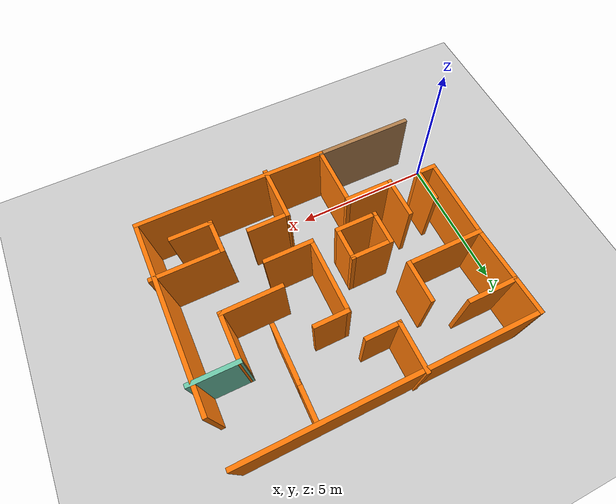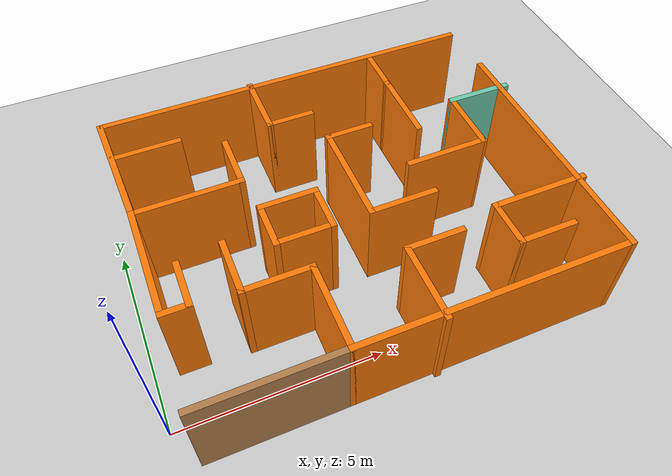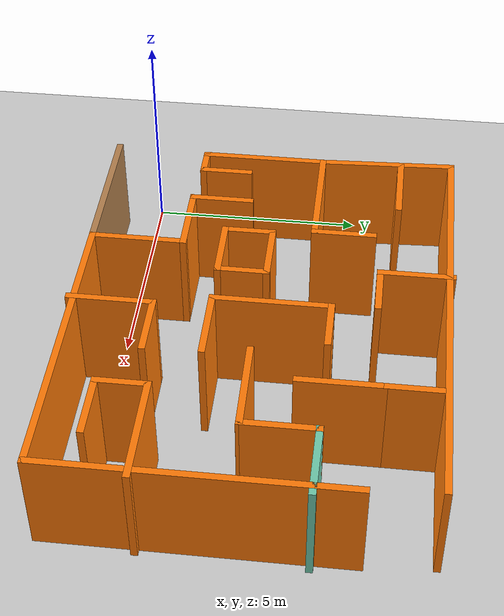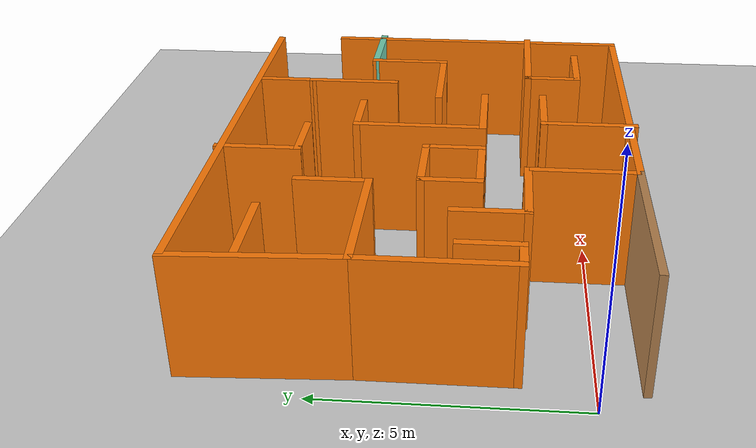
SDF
<sdf version="1.7">
 <world name="default">
  <light name="sun" type="directional">
   <pose>0 0 10 0 -0 0</pose>
   <diffuse>0.8 0.8 0.8 1</diffuse>
   <specular>0.2 0.2 0.2 1</specular>
   <attenuation>
    <range>1000</range>
    <constant>0.9</constant>
    <linear>0.01</linear>
    <quadratic>0.001</quadratic>
   </attenuation>
   <direction>-0.5 0.1 -0.9</direction>
   <spot><inner_angle>0</inner_angle><outer_angle>0</outer_angle><falloff>0</falloff></spot>
  </light>
  <model name="ground_plane">
   <static>1</static>
   <link name="link">
    <collision name="collision">
     <geometry><plane><normal>0 0 1</normal><size>100 100</size></plane></geometry>
     <surface>
      <contact><collide_bitmask>65535</collide_bitmask></contact>
      <friction><ode><mu>100</mu><mu2>50</mu2></ode></friction>
     </surface>
    </collision>
    <visual name="visual">
     <cast_shadows>0</cast_shadows>
     <geometry><plane><normal>0 0 1</normal><size>100 100</size></plane></geometry>
     <material>
      <script><uri>file://media/materials/scripts/gazebo.material</uri><name>Gazebo/Grey</name></script>
     </material>
    </visual>
   </link>
  </model>
  <gravity>0 0 -9.8</gravity>
  <magnetic_field>6e-06 2.3e-05 -4.2e-05</magnetic_field>
  <atmosphere type="adiabatic"/>
  <physics type="ode">
   <max_step_size>0.001</max_step_size>
   <real_time_factor>1</real_time_factor>
   <real_time_update_rate>1000</real_time_update_rate>
  </physics>
  <scene><ambient>0.4 0.4 0.4 1</ambient><background>0.7 0.7 0.7 1</background><shadows>1</shadows></scene>
  <spherical_coordinates>
   <surface_model>EARTH_WGS84</surface_model>
   <latitude_deg>0</latitude_deg>
   <longitude_deg>0</longitude_deg>
   <elevation>0</elevation>
   <heading_deg>0</heading_deg>
  </spherical_coordinates>
  <model name="myworld">
   <pose>5.38285 3.20459 0 0 -0 0</pose>
   <link name="Wall_10">
    <collision name="Wall_10_Collision">
     <geometry><box><size>1.75 0.15 2.5</size></box></geometry>
     <pose>0 0 1.25 0 -0 0</pose>
    </collision>
    <visual name="Wall_10_Visual">
     <pose>0 0 1.25 0 -0 0</pose>
     <geometry><box><size>1.75 0.15 2.5</size></box></geometry>
     <material>
      <script><uri>file://media/materials/scripts/gazebo.material</uri><name>Gazebo/Grey</name></script>
      <ambient>0.996078 0.47451 0.0196078 1</ambient>
     </material>
     <meta><layer>0</layer></meta>
    </visual>
    <pose>-2.30285 -1.95459 0 0 -0 3.14159</pose>
   </link>
   <link name="Wall_11">
    <collision name="Wall_11_Collision">
     <geometry><box><size>1.5 0.15 2.5</size></box></geometry>
     <pose>0 0 1.25 0 -0 0</pose>
    </collision>
    <visual name="Wall_11_Visual">
     <pose>0 0 1.25 0 -0 0</pose>
     <geometry><box><size>1.5 0.15 2.5</size></box></geometry>
     <material>
      <script><uri>file://media/materials/scripts/gazebo.material</uri><name>Gazebo/Grey</name></script>
      <ambient>0.996078 0.47451 0.0196078 1</ambient>
     </material>
     <meta><layer>0</layer></meta>
    </visual>
    <pose>-3.10285 -1.27959 0 0 -0 1.5708</pose>
   </link>
   <link name="Wall_13">
    <collision name="Wall_13_Collision">
     <geometry><box><size>1.25 0.15 2.5</size></box></geometry>
     <pose>0 0 1.25 0 -0 0</pose>
    </collision>
    <visual name="Wall_13_Visual">
     <pose>0 0 1.25 0 -0 0</pose>
     <geometry><box><size>1.25 0.15 2.5</size></box></geometry>
     <material>
      <script><uri>file://media/materials/scripts/gazebo.material</uri><name>Gazebo/Grey</name></script>
      <ambient>0.996078 0.47451 0.0196078 1</ambient>
     </material>
     <meta><layer>0</layer></meta>
    </visual>
    <pose>-4.16733 -1.30895 0 0 -0 -1.5708</pose>
   </link>
   <link name="Wall_14">
    <collision name="Wall_14_Collision">
     <geometry><box><size>0.75 0.15 2.5</size></box></geometry>
     <pose>0 0 1.25 0 -0 0</pose>
    </collision>
    <visual name="Wall_14_Visual">
     <pose>0 0 1.25 0 -0 0</pose>
     <geometry><box><size>0.75 0.15 2.5</size></box></geometry>
     <material>
      <script><uri>file://media/materials/scripts/gazebo.material</uri><name>Gazebo/Grey</name></script>
      <ambient>0.996078 0.47451 0.0196078 1</ambient>
     </material>
     <meta><layer>0</layer></meta>
    </visual>
    <pose>-4.46733 -1.85895 0 0 -0 3.14159</pose>
   </link>
   <link name="Wall_15">
    <collision name="Wall_15_Collision">
     <geometry><box><size>3 0.15 2.5</size></box></geometry>
     <pose>0 0 1.25 0 -0 0</pose>
    </collision>
    <visual name="Wall_15_Visual">
     <pose>0 0 1.25 0 -0 0</pose>
     <geometry><box><size>3 0.15 2.5</size></box></geometry>
     <material>
      <script><uri>file://media/materials/scripts/gazebo.material</uri><name>Gazebo/Grey</name></script>
      <ambient>0.996078 0.47451 0.0196078 1</ambient>
     </material>
     <meta><layer>0</layer></meta>
    </visual>
    <pose>-4.76733 -0.433946 0 0 -0 1.5708</pose>
   </link>
   <link name="Wall_16">
    <collision name="Wall_16_Collision">
     <geometry><box><size>2.75 0.15 2.5</size></box></geometry>
     <pose>0 0 1.25 0 -0 0</pose>
    </collision>
    <visual name="Wall_16_Visual">
     <pose>0 0 1.25 0 -0 0</pose>
     <geometry><box><size>2.75 0.15 2.5</size></box></geometry>
     <material>
      <script><uri>file://media/materials/scripts/gazebo.material</uri><name>Gazebo/Grey</name></script>
      <ambient>0.996078 0.47451 0.0196078 1</ambient>
     </material>
     <meta><layer>0</layer></meta>
    </visual>
    <pose>-3.46733 0.991054 0 0 -0 0</pose>
   </link>
   <link name="Wall_17">
    <collision name="Wall_17_Collision">
     <geometry><box><size>1.5 0.15 2.5</size></box></geometry>
     <pose>0 0 1.25 0 -0 0</pose>
    </collision>
    <visual name="Wall_17_Visual">
     <pose>0 0 1.25 0 -0 0</pose>
     <geometry><box><size>1.5 0.15 2.5</size></box></geometry>
     <material>
      <script><uri>file://media/materials/scripts/gazebo.material</uri><name>Gazebo/Grey</name></script>
      <ambient>0.996078 0.47451 0.0196078 1</ambient>
     </material>
     <meta><layer>0</layer></meta>
    </visual>
    <pose>-2.16733 1.66605 0 0 -0 1.5708</pose>
   </link>
   <link name="Wall_19">
    <collision name="Wall_19_Collision">
     <geometry><box><size>3.25337 0.15 2.5</size></box></geometry>
     <pose>0 0 1.25 0 -0 0</pose>
    </collision>
    <visual name="Wall_19_Visual">
     <pose>0 0 1.25 0 -0 0</pose>
     <geometry><box><size>3.25337 0.15 2.5</size></box></geometry>
     <material>
      <script><uri>file://media/materials/scripts/gazebo.material</uri><name>Gazebo/Grey</name></script>
      <ambient>0.996078 0.47451 0.0196078 1</ambient>
     </material>
     <meta><layer>0</layer></meta>
    </visual>
    <pose>-4.8357 2.54123 0 0 -0 1.61487</pose>
   </link>
   <link name="Wall_20">
    <collision name="Wall_20_Collision">
     <geometry><box><size>10 0.15 2.5</size></box></geometry>
     <pose>0 0 1.25 0 -0 0</pose>
    </collision>
    <visual name="Wall_20_Visual">
     <pose>0 0 1.25 0 -0 0</pose>
     <geometry><box><size>10 0.15 2.5</size></box></geometry>
     <material>
      <script><uri>file://media/materials/scripts/gazebo.material</uri><name>Gazebo/Grey</name></script>
      <ambient>0.996078 0.47451 0.0196078 1</ambient>
     </material>
     <meta><layer>0</layer></meta>
    </visual>
    <pose>0.089537 4.09141 0 0 -0 0</pose>
   </link>
   <link name="Wall_25">
    <collision name="Wall_25_Collision">
     <geometry><box><size>1.75 0.15 2.5</size></box></geometry>
     <pose>0 0 1.25 0 -0 0</pose>
    </collision>
    <visual name="Wall_25_Visual">
     <pose>0 0 1.25 0 -0 0</pose>
     <geometry><box><size>1.75 0.15 2.5</size></box></geometry>
     <material>
      <script><uri>file://media/materials/scripts/gazebo.material</uri><name>Gazebo/Grey</name></script>
      <ambient>0.996078 0.47451 0.0196078 1</ambient>
     </material>
     <meta><layer>0</layer></meta>
    </visual>
    <pose>-4.00665 2.88233 0 0 -0 0</pose>
   </link>
   <link name="Wall_27">
    <collision name="Wall_27_Collision">
     <geometry><box><size>6.803 0.15 2.5</size></box></geometry>
     <pose>0 0 1.25 0 -0 0</pose>
    </collision>
    <visual name="Wall_27_Visual">
     <pose>0 0 1.25 0 -0 0</pose>
     <geometry><box><size>6.803 0.15 2.5</size></box></geometry>
     <material>
      <script><uri>file://media/materials/scripts/gazebo.material</uri><name>Gazebo/Grey</name></script>
      <ambient>0.996078 0.47451 0.0196078 1</ambient>
     </material>
     <meta><layer>0</layer></meta>
    </visual>
    <pose>1.82365 -4.05459 0 0 -0 0</pose>
   </link>
   <link name="Wall_30">
    <collision name="Wall_30_Collision">
     <geometry><box><size>6.75 0.15 2.5</size></box></geometry>
     <pose>0 0 1.25 0 -0 0</pose>
    </collision>
    <visual name="Wall_30_Visual">
     <pose>0 0 1.25 0 -0 0</pose>
     <geometry><box><size>6.75 0.15 2.5</size></box></geometry>
     <material>
      <script><uri>file://media/materials/scripts/gazebo.material</uri><name>Gazebo/Grey</name></script>
      <ambient>0.996078 0.47451 0.0196078 1</ambient>
     </material>
     <meta><layer>0</layer></meta>
    </visual>
    <pose>5.15015 -0.754594 0 0 -0 1.5708</pose>
   </link>
   <link name="Wall_32">
    <collision name="Wall_32_Collision">
     <geometry><box><size>2.5 0.15 2.5</size></box></geometry>
     <pose>0 0 1.25 0 -0 0</pose>
    </collision>
    <visual name="Wall_32_Visual">
     <pose>0 0 1.25 0 -0 0</pose>
     <geometry><box><size>2.5 0.15 2.5</size></box></geometry>
     <material>
      <script><uri>file://media/materials/scripts/gazebo.material</uri><name>Gazebo/Grey</name></script>
      <ambient>0.996078 0.47451 0.0196078 1</ambient>
     </material>
     <meta><layer>0</layer></meta>
    </visual>
    <pose>4.10574 -1.99779 0 0 -0 3.14159</pose>
   </link>
   <link name="Wall_34">
    <collision name="Wall_34_Collision">
     <geometry><box><size>1.71997 0.15 2.5</size></box></geometry>
     <pose>0 0 1.25 0 -0 0</pose>
    </collision>
    <visual name="Wall_34_Visual">
     <pose>0 0 1.25 0 -0 0</pose>
     <geometry><box><size>1.71997 0.15 2.5</size></box></geometry>
     <material>
      <script><uri>file://media/materials/scripts/gazebo.material</uri><name>Gazebo/Grey</name></script>
      <ambient>0.435294 0.796078 0.67451 1</ambient>
     </material>
     <meta><layer>0</layer></meta>
    </visual>
    <pose>4.52215 1.56041 0 0 -0 3.1314</pose>
   </link>
   <link name="Wall_35">
    <collision name="Wall_35_Collision">
     <geometry><box><size>1.75 0.15 2.5</size></box></geometry>
     <pose>0 0 1.25 0 -0 0</pose>
    </collision>
    <visual name="Wall_35_Visual">
     <pose>0 0 1.25 0 -0 0</pose>
     <geometry><box><size>1.75 0.15 2.5</size></box></geometry>
     <material>
      <script><uri>file://media/materials/scripts/gazebo.material</uri><name>Gazebo/Grey</name></script>
      <ambient>0.996078 0.47451 0.0196078 1</ambient>
     </material>
     <meta><layer>0</layer></meta>
    </visual>
    <pose>3.73715 0.768406 0 0 -0 -1.5708</pose>
   </link>
   <link name="Wall_36">
    <collision name="Wall_36_Collision">
     <geometry><box><size>2.15918 0.15 2.5</size></box></geometry>
     <pose>0 0 1.25 0 -0 0</pose>
    </collision>
    <visual name="Wall_36_Visual">
     <pose>0 0 1.25 0 -0 0</pose>
     <geometry><box><size>2.15918 0.15 2.5</size></box></geometry>
     <material>
      <script><uri>file://media/materials/scripts/gazebo.material</uri><name>Gazebo/Grey</name></script>
      <ambient>0.996078 0.47451 0.0196078 1</ambient>
     </material>
     <meta><layer>0</layer></meta>
    </visual>
    <pose>2.73259 -0.039396 0 0 -0 -3.13383</pose>
   </link>
   <link name="Wall_38">
    <collision name="Wall_38_Collision">
     <geometry><box><size>1.25 0.15 2.5</size></box></geometry>
     <pose>0 0 1.25 0 -0 0</pose>
    </collision>
    <visual name="Wall_38_Visual">
     <pose>0 0 1.25 0 -0 0</pose>
     <geometry><box><size>1.25 0.15 2.5</size></box></geometry>
     <material>
      <script><uri>file://media/materials/scripts/gazebo.material</uri><name>Gazebo/Grey</name></script>
      <ambient>0.996078 0.47451 0.0196078 1</ambient>
     </material>
     <meta><layer>0</layer></meta>
    </visual>
    <pose>0.807042 1.5528 0 0 -0 3.14159</pose>
   </link>
   <link name="Wall_39">
    <collision name="Wall_39_Collision">
     <geometry><box><size>2.75 0.15 2.5</size></box></geometry>
     <pose>0 0 1.25 0 -0 0</pose>
    </collision>
    <visual name="Wall_39_Visual">
     <pose>0 0 1.25 0 -0 0</pose>
     <geometry><box><size>2.75 0.15 2.5</size></box></geometry>
     <material>
      <script><uri>file://media/materials/scripts/gazebo.material</uri><name>Gazebo/Grey</name></script>
      <ambient>0.996078 0.47451 0.0196078 1</ambient>
     </material>
     <meta><layer>0</layer></meta>
    </visual>
    <pose>0.257042 0.252802 0 0 -0 -1.5708</pose>
   </link>
   <link name="Wall_40">
    <collision name="Wall_40_Collision">
     <geometry><box><size>1.75 0.15 2.5</size></box></geometry>
     <pose>0 0 1.25 0 -0 0</pose>
    </collision>
    <visual name="Wall_40_Visual">
     <pose>0 0 1.25 0 -0 0</pose>
     <geometry><box><size>1.75 0.15 2.5</size></box></geometry>
     <material>
      <script><uri>file://media/materials/scripts/gazebo.material</uri><name>Gazebo/Grey</name></script>
      <ambient>0.996078 0.47451 0.0196078 1</ambient>
     </material>
     <meta><layer>0</layer></meta>
    </visual>
    <pose>1.05704 -1.0472 0 0 -0 0</pose>
   </link>
   <link name="Wall_42">
    <collision name="Wall_42_Collision">
     <geometry><box><size>2 0.15 2.5</size></box></geometry>
     <pose>0 0 1.25 0 -0 0</pose>
    </collision>
    <visual name="Wall_42_Visual">
     <pose>0 0 1.25 0 -0 0</pose>
     <geometry><box><size>2 0.15 2.5</size></box></geometry>
     <material>
      <script><uri>file://media/materials/scripts/gazebo.material</uri><name>Gazebo/Grey</name></script>
      <ambient>0.996078 0.47451 0.0196078 1</ambient>
     </material>
     <meta><layer>0</layer></meta>
    </visual>
    <pose>0.546624 -3.22944 0 0 -0 1.5708</pose>
   </link>
   <link name="Wall_43">
    <collision name="Wall_43_Collision">
     <geometry><box><size>1.5 0.15 2.5</size></box></geometry>
     <pose>0 0 1.25 0 -0 0</pose>
    </collision>
    <visual name="Wall_43_Visual">
     <pose>0 0 1.25 0 -0 0</pose>
     <geometry><box><size>1.5 0.15 2.5</size></box></geometry>
     <material>
      <script><uri>file://media/materials/scripts/gazebo.material</uri><name>Gazebo/Grey</name></script>
      <ambient>0.996078 0.47451 0.0196078 1</ambient>
     </material>
     <meta><layer>0</layer></meta>
    </visual>
    <pose>1.22162 -2.30444 0 0 -0 0</pose>
   </link>
   <link name="Wall_45">
    <collision name="Wall_45_Collision">
     <geometry><box><size>1.25 0.15 2.5</size></box></geometry>
     <pose>0 0 1.25 0 -0 0</pose>
    </collision>
    <visual name="Wall_45_Visual">
     <pose>0 0 1.25 0 -0 0</pose>
     <geometry><box><size>1.25 0.15 2.5</size></box></geometry>
     <material>
      <script><uri>file://media/materials/scripts/gazebo.material</uri><name>Gazebo/Grey</name></script>
      <ambient>0.996078 0.47451 0.0196078 1</ambient>
     </material>
     <meta><layer>0</layer></meta>
    </visual>
    <pose>2.93074 -2.54779 0 0 -0 -1.5708</pose>
   </link>
   <link name="Wall_46">
    <collision name="Wall_46_Collision">
     <geometry><box><size>1.5 0.15 2.5</size></box></geometry>
     <pose>0 0 1.25 0 -0 0</pose>
    </collision>
    <visual name="Wall_46_Visual">
     <pose>0 0 1.25 0 -0 0</pose>
     <geometry><box><size>1.5 0.15 2.5</size></box></geometry>
     <material>
      <script><uri>file://media/materials/scripts/gazebo.material</uri><name>Gazebo/Grey</name></script>
      <ambient>0.996078 0.47451 0.0196078 1</ambient>
     </material>
     <meta><layer>0</layer></meta>
    </visual>
    <pose>3.60574 -3.09779 0 0 -0 0</pose>
   </link>
   <link name="Wall_48">
    <collision name="Wall_48_Collision">
     <geometry><box><size>1.25 0.15 2.5</size></box></geometry>
     <pose>0 0 1.25 0 -0 0</pose>
    </collision>
    <visual name="Wall_48_Visual">
     <pose>0 0 1.25 0 -0 0</pose>
     <geometry><box><size>1.25 0.15 2.5</size></box></geometry>
     <material>
      <script><uri>file://media/materials/scripts/gazebo.material</uri><name>Gazebo/Grey</name></script>
      <ambient>0.996078 0.47451 0.0196078 1</ambient>
     </material>
     <meta><layer>0</layer></meta>
    </visual>
    <pose>2.46636 3.39628 0 0 -0 -1.57118</pose>
   </link>
   <link name="Wall_49">
    <collision name="Wall_49_Collision">
     <geometry><box><size>2 0.15 2.5</size></box></geometry>
     <pose>0 0 1.25 0 -0 0</pose>
    </collision>
    <visual name="Wall_49_Visual">
     <pose>0 0 1.25 0 -0 0</pose>
     <geometry><box><size>2 0.15 2.5</size></box></geometry>
     <material>
      <script><uri>file://media/materials/scripts/gazebo.material</uri><name>Gazebo/Grey</name></script>
      <ambient>0.996078 0.47451 0.0196078 1</ambient>
     </material>
     <meta><layer>0</layer></meta>
    </visual>
    <pose>2.46615 1.92141 0 0 -0 -1.5708</pose>
   </link>
   <link name="Wall_51">
    <collision name="Wall_51_Collision">
     <geometry><box><size>1.75 0.15 2.5</size></box></geometry>
     <pose>0 0 1.25 0 -0 0</pose>
    </collision>
    <visual name="Wall_51_Visual">
     <pose>0 0 1.25 0 -0 0</pose>
     <geometry><box><size>1.75 0.15 2.5</size></box></geometry>
     <material>
      <script><uri>file://media/materials/scripts/gazebo.material</uri><name>Gazebo/Grey</name></script>
      <ambient>0.996078 0.47451 0.0196078 1</ambient>
     </material>
     <meta><layer>0</layer></meta>
    </visual>
    <pose>-0.942196 3.35444 0 0 -0 -1.5708</pose>
   </link>
   <link name="Wall_52">
    <collision name="Wall_52_Collision">
     <geometry><box><size>1.25 0.15 2.5</size></box></geometry>
     <pose>0 0 1.25 0 -0 0</pose>
    </collision>
    <visual name="Wall_52_Visual">
     <pose>0 0 1.25 0 -0 0</pose>
     <geometry><box><size>1.25 0.15 2.5</size></box></geometry>
     <material>
      <script><uri>file://media/materials/scripts/gazebo.material</uri><name>Gazebo/Grey</name></script>
      <ambient>0.996078 0.47451 0.0196078 1</ambient>
     </material>
     <meta><layer>0</layer></meta>
    </visual>
    <pose>-0.392196 2.55444 0 0 -0 0</pose>
   </link>
   <link name="Wall_54">
    <collision name="Wall_54_Collision">
     <geometry><box><size>1.25 0.15 2.5</size></box></geometry>
     <pose>0 0 1.25 0 -0 0</pose>
    </collision>
    <visual name="Wall_54_Visual">
     <pose>0 0 1.25 0 -0 0</pose>
     <geometry><box><size>1.25 0.15 2.5</size></box></geometry>
     <material>
      <script><uri>file://media/materials/scripts/gazebo.material</uri><name>Gazebo/Grey</name></script>
      <ambient>0.996078 0.47451 0.0196078 1</ambient>
     </material>
     <meta><layer>0</layer></meta>
    </visual>
    <pose>-2.03104 -0.508982 0 0 -0 -1.5708</pose>
   </link>
   <link name="Wall_55">
    <collision name="Wall_55_Collision">
     <geometry><box><size>1.5 0.15 2.5</size></box></geometry>
     <pose>0 0 1.25 0 -0 0</pose>
    </collision>
    <visual name="Wall_55_Visual">
     <pose>0 0 1.25 0 -0 0</pose>
     <geometry><box><size>1.5 0.15 2.5</size></box></geometry>
     <material>
      <script><uri>file://media/materials/scripts/gazebo.material</uri><name>Gazebo/Grey</name></script>
      <ambient>0.996078 0.47451 0.0196078 1</ambient>
     </material>
     <meta><layer>0</layer></meta>
    </visual>
    <pose>-1.35604 -1.05898 0 0 -0 0</pose>
   </link>
   <link name="Wall_56">
    <collision name="Wall_56_Collision">
     <geometry><box><size>1.25 0.15 2.5</size></box></geometry>
     <pose>0 0 1.25 0 -0 0</pose>
    </collision>
    <visual name="Wall_56_Visual">
     <pose>0 0 1.25 0 -0 0</pose>
     <geometry><box><size>1.25 0.15 2.5</size></box></geometry>
     <material>
      <script><uri>file://media/materials/scripts/gazebo.material</uri><name>Gazebo/Grey</name></script>
      <ambient>0.996078 0.47451 0.0196078 1</ambient>
     </material>
     <meta><layer>0</layer></meta>
    </visual>
    <pose>-0.681043 -0.508982 0 0 -0 1.5708</pose>
   </link>
   <link name="Wall_57">
    <collision name="Wall_57_Collision">
     <geometry><box><size>1.5 0.15 2.5</size></box></geometry>
     <pose>0 0 1.25 0 -0 0</pose>
    </collision>
    <visual name="Wall_57_Visual">
     <pose>0 0 1.25 0 -0 0</pose>
     <geometry><box><size>1.5 0.15 2.5</size></box></geometry>
     <material>
      <script><uri>file://media/materials/scripts/gazebo.material</uri><name>Gazebo/Grey</name></script>
      <ambient>0.996078 0.47451 0.0196078 1</ambient>
     </material>
     <meta><layer>0</layer></meta>
    </visual>
    <pose>-1.35604 0.041017 0 0 -0 3.14159</pose>
   </link>
   <link name="Wall_8">
    <collision name="Wall_8_Collision">
     <geometry><box><size>3.5 0.15 2.5</size></box></geometry>
     <pose>0 0 1.25 0 -0 0</pose>
    </collision>
    <visual name="Wall_8_Visual">
     <pose>0 0 1.25 0 -0 0</pose>
     <geometry><box><size>3.5 0.15 2.5</size></box></geometry>
     <material>
      <script><uri>file://media/materials/scripts/gazebo.material</uri><name>Gazebo/Wood</name></script>
      <ambient>0.996078 0.47451 0.0196078 1</ambient>
     </material>
     <meta><layer>0</layer></meta>
    </visual>
    <pose>-3.17785 -4.05459 0 0 -0 0</pose>
   </link>
   <link name="Wall_9">
    <collision name="Wall_9_Collision">
     <geometry><box><size>2.25 0.15 2.5</size></box></geometry>
     <pose>0 0 1.25 0 -0 0</pose>
    </collision>
    <visual name="Wall_9_Visual">
     <pose>0 0 1.25 0 -0 0</pose>
     <geometry><box><size>2.25 0.15 2.5</size></box></geometry>
     <material>
      <script><uri>file://media/materials/scripts/gazebo.material</uri><name>Gazebo/Grey</name></script>
      <ambient>0.996078 0.47451 0.0196078 1</ambient>
     </material>
     <meta><layer>0</layer></meta>
    </visual>
    <pose>-1.50285 -3.00459 0 0 -0 1.5708</pose>
   </link>
   <static>1</static>
  </model>
 </world>
</sdf>
